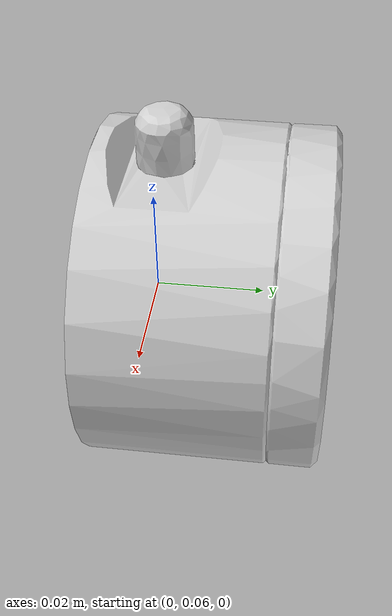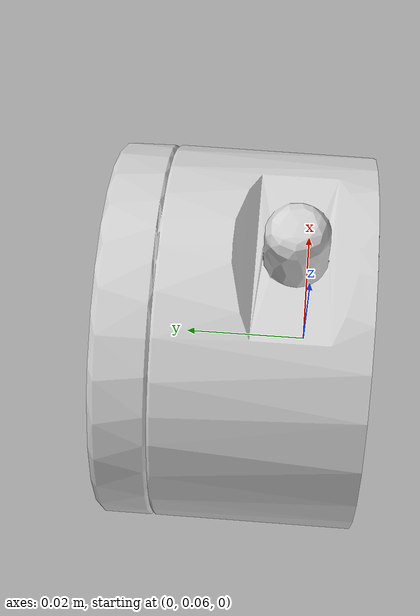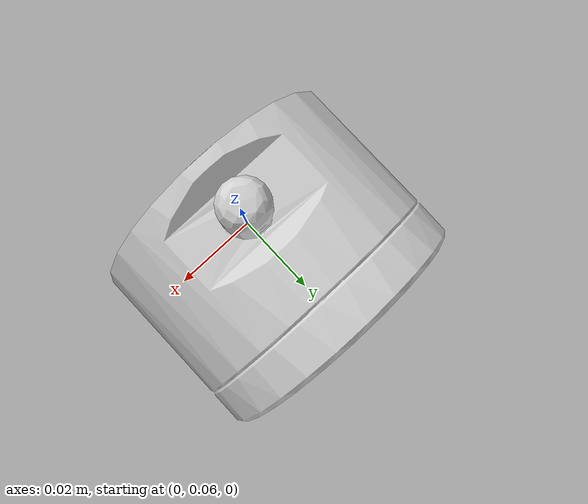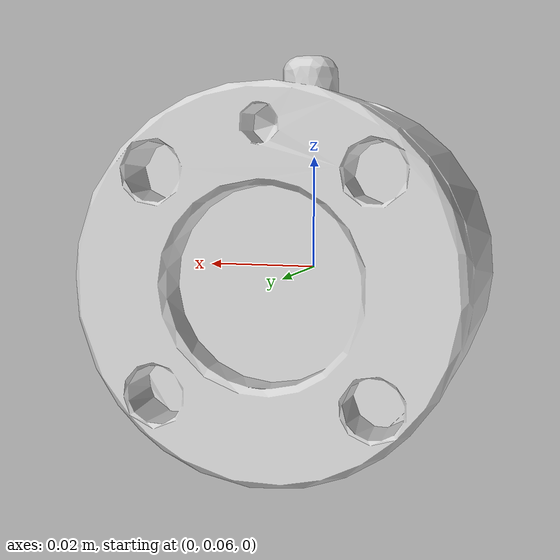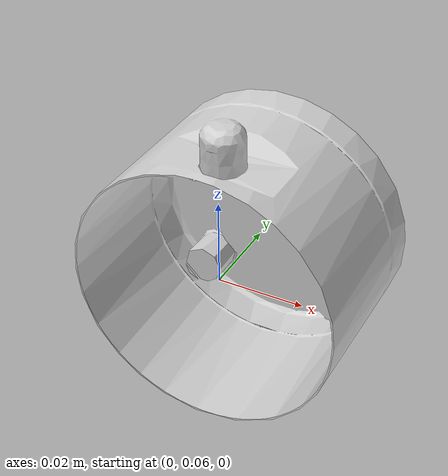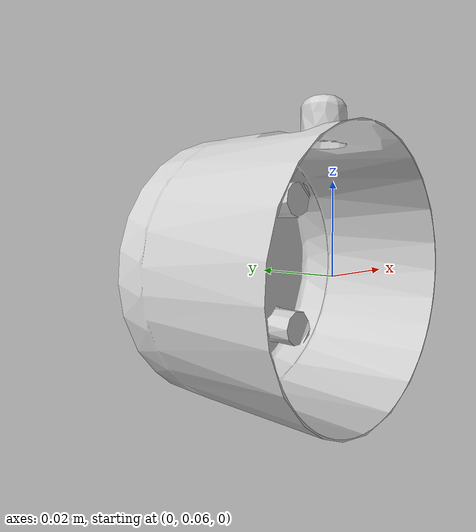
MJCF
<mujoco model="wrist3">
  <default>
    <default class="visual">
      <geom group="2" type="mesh" contype="0" conaffinity="0"/>
    </default>
    <default class="collision">
      <geom group="3" type="mesh"/>
    </default>
  </default>
  <asset>
    <material name="LinkGrey.001" specular="0.5" shininess="0.25" rgba="0.820392 0.820392 0.820392 1.000000"/>
    <mesh file="wrist3.obj"/>
  </asset>
  <worldbody>
    <body name="wrist3">
      <geom material="LinkGrey.001" mesh="wrist3" class="visual"/>
      <geom mesh="wrist3" class="collision"/>
    </body>
  </worldbody>
</mujoco>
